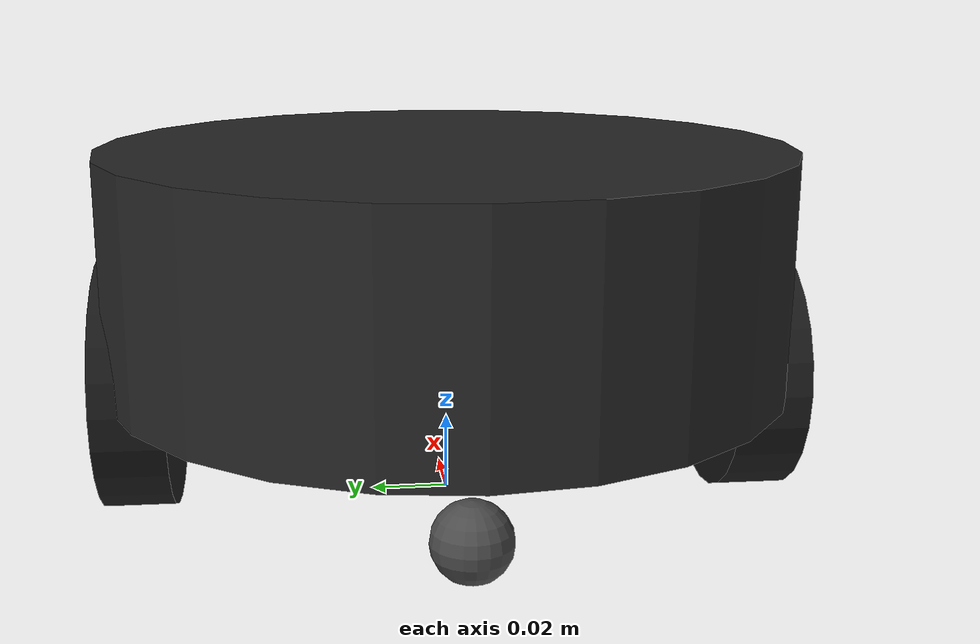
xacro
<?xml version="1.0"?>
<!--
  fire_bot base: TurtleBot3 Burger 기본 치수(바퀴 반경 0.033m, 바퀴 간격 0.160m,
  몸체 약 0.138(h) x 0.178(d))를 따르는 1층(모터/OpenCR) 몸체 + 바퀴 + 캐스터.
  관성값은 상자/원통 매크로로 근사 계산한다(매직넘버 대신 매크로 인자로 관리).
-->
<robot xmlns:xacro="http://www.ros.org/wiki/xacro">

  <!-- ===== 공통 관성 매크로 ===== -->
  <xacro:macro name="cylinder_inertial" params="mass radius length *origin">
    <inertial>
      <xacro:insert_block name="origin"/>
      <mass value="${mass}"/>
      <inertia
        ixx="${mass*(3*radius*radius+length*length)/12}" ixy="0.0" ixz="0.0"
        iyy="${mass*(3*radius*radius+length*length)/12}" iyz="0.0"
        izz="${mass*radius*radius/2}"/>
    </inertial>
  </xacro:macro>

  <xacro:macro name="box_inertial" params="mass x y z *origin">
    <inertial>
      <xacro:insert_block name="origin"/>
      <mass value="${mass}"/>
      <inertia
        ixx="${mass*(y*y+z*z)/12}" ixy="0.0" ixz="0.0"
        iyy="${mass*(x*x+z*z)/12}" iyz="0.0"
        izz="${mass*(x*x+y*y)/12}"/>
    </inertial>
  </xacro:macro>

  <xacro:macro name="sphere_inertial" params="mass radius *origin">
    <inertial>
      <xacro:insert_block name="origin"/>
      <mass value="${mass}"/>
      <inertia
        ixx="${2*mass*radius*radius/5}" ixy="0.0" ixz="0.0"
        iyy="${2*mass*radius*radius/5}" iyz="0.0"
        izz="${2*mass*radius*radius/5}"/>
    </inertial>
  </xacro:macro>

  <!-- ===== 치수 상수 (매직넘버 금지 → xacro property) ===== -->
  <xacro:property name="wheel_radius" value="0.033"/>
  <xacro:property name="wheel_width" value="0.018"/>
  <xacro:property name="wheel_separation" value="0.160"/>
  <xacro:property name="base_radius" value="0.089"/>      <!-- 몸체 지름 0.178m -->
  <xacro:property name="base_height" value="0.060"/>       <!-- plate1: z 0.01~0.07 -->
  <xacro:property name="base_mass" value="0.90"/>          <!-- 모터/OpenCR 포함 1층 -->
  <xacro:property name="wheel_mass" value="0.028"/>
  <xacro:property name="caster_radius" value="0.010"/>
  <xacro:property name="caster_mass" value="0.02"/>

  <!-- base_footprint: 바닥 투영 기준 프레임 (z=0), EKF/Nav2 의 base_frame -->
  <link name="base_footprint"/>

  <joint name="base_joint" type="fixed">
    <parent link="base_footprint"/>
    <child link="base_link"/>
    <origin xyz="0 0 ${wheel_radius}" rpy="0 0 0"/>
  </joint>

  <!-- base_link = plate1 (모터/OpenCR 모터 드라이버 층, z ≈ 0.01~0.07 (base_footprint 기준으로는 wheel_radius 부터)) -->
  <link name="base_link">
    <visual>
      <origin xyz="0 0 ${base_height/2}" rpy="0 0 0"/>
      <geometry><cylinder radius="${base_radius}" length="${base_height}"/></geometry>
      <material name="fire_bot_dark"><color rgba="0.15 0.15 0.15 1.0"/></material>
    </visual>
    <collision>
      <origin xyz="0 0 ${base_height/2}" rpy="0 0 0"/>
      <geometry><cylinder radius="${base_radius}" length="${base_height}"/></geometry>
    </collision>
    <xacro:box_inertial mass="${base_mass}" x="${base_radius*2}" y="${base_radius*2}" z="${base_height}">
      <origin xyz="0 0 ${base_height/2}" rpy="0 0 0"/>
    </xacro:box_inertial>
  </link>

  <!-- ===== 바퀴 ===== -->
  <xacro:macro name="wheel" params="prefix reflect">
    <link name="wheel_${prefix}_link">
      <visual>
        <origin xyz="0 0 0" rpy="${pi/2} 0 0"/>
        <geometry><cylinder radius="${wheel_radius}" length="${wheel_width}"/></geometry>
        <material name="fire_bot_wheel"><color rgba="0.1 0.1 0.1 1.0"/></material>
      </visual>
      <collision>
        <origin xyz="0 0 0" rpy="${pi/2} 0 0"/>
        <geometry><cylinder radius="${wheel_radius}" length="${wheel_width}"/></geometry>
      </collision>
      <xacro:cylinder_inertial mass="${wheel_mass}" radius="${wheel_radius}" length="${wheel_width}">
        <origin xyz="0 0 0" rpy="${pi/2} 0 0"/>
      </xacro:cylinder_inertial>
    </link>
    <joint name="wheel_${prefix}_joint" type="continuous">
      <parent link="base_link"/>
      <child link="wheel_${prefix}_link"/>
      <origin xyz="0 ${reflect*wheel_separation/2} 0" rpy="0 0 0"/>
      <axis xyz="0 1 0"/>
      <dynamics damping="0.05" friction="0.05"/>
    </joint>
  </xacro:macro>

  <xacro:wheel prefix="left" reflect="1"/>
  <xacro:wheel prefix="right" reflect="-1"/>

  <!-- ===== 캐스터 (앞/뒤, 마찰 낮은 구) ===== -->
  <xacro:macro name="caster" params="prefix x">
    <link name="caster_${prefix}_link">
      <visual>
        <geometry><sphere radius="${caster_radius}"/></geometry>
        <material name="fire_bot_caster"><color rgba="0.3 0.3 0.3 1.0"/></material>
      </visual>
      <collision>
        <geometry><sphere radius="${caster_radius}"/></geometry>
      </collision>
      <xacro:sphere_inertial mass="${caster_mass}" radius="${caster_radius}">
        <origin xyz="0 0 0" rpy="0 0 0"/>
      </xacro:sphere_inertial>
    </link>
    <joint name="caster_${prefix}_joint" type="fixed">
      <parent link="base_link"/>
      <child link="caster_${prefix}_link"/>
      <origin xyz="${x} 0 ${-(wheel_radius-caster_radius)}" rpy="0 0 0"/>
    </joint>
    <gazebo reference="caster_${prefix}_link">
      <mu1>0.01</mu1>
      <mu2>0.01</mu2>
    </gazebo>
  </xacro:macro>

  <xacro:caster prefix="front" x="0.06"/>
  <xacro:caster prefix="back" x="-0.06"/>

</robot>
